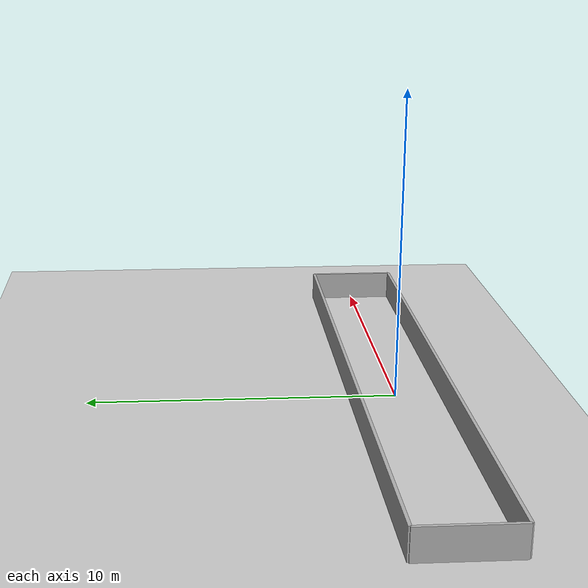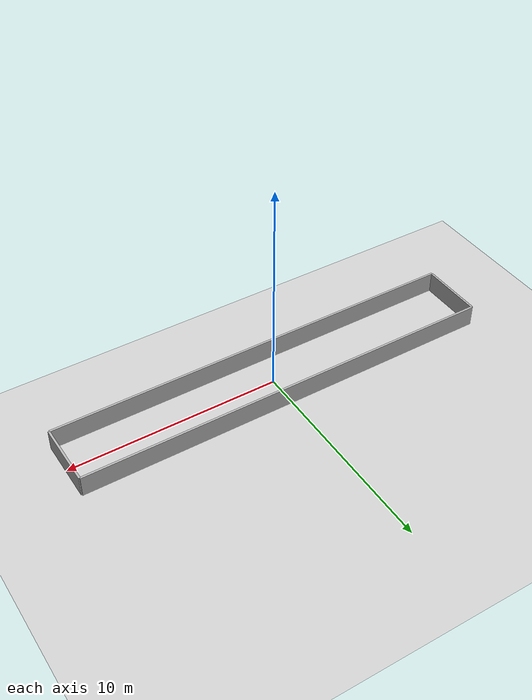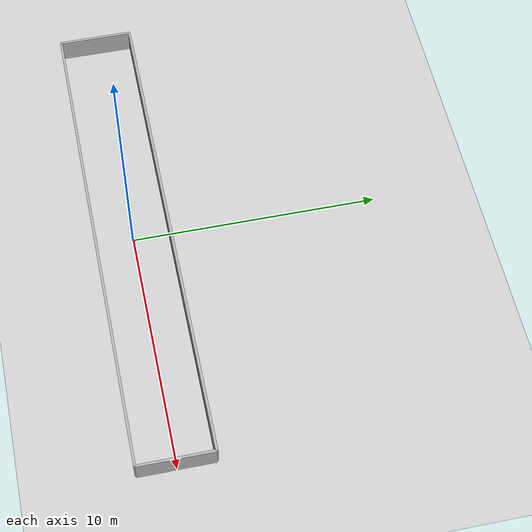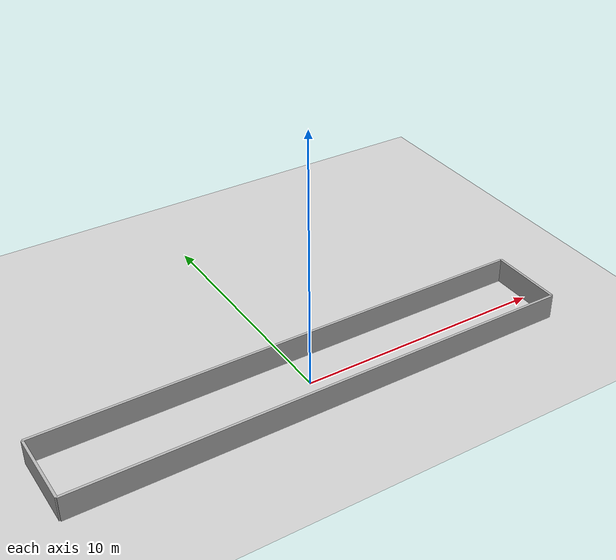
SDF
<?xml version="1.0" ?>
<sdf version="1.6">
  <world name="corridor">

    <physics type="ode">
      <max_step_size>0.01</max_step_size>
      <real_time_factor>1</real_time_factor>
      <real_time_update_rate>100</real_time_update_rate>
    </physics>

    <gui>
      <camera name="user_camera">
        <pose>-6 0 8 0 0.9 0</pose>
      </camera>
    </gui>

    <include><uri>model://sun</uri></include>
    <include><uri>model://ground_plane</uri></include>

    <!-- 20 m x 3 m straight corridor, walls along ±Y -->
    <model name="wall_north">
      <static>true</static>
      <pose>0 1.5 0.5 0 0 0</pose>
      <link name="link">
        <collision name="c"><geometry><box><size>20 0.1 1.0</size></box></geometry></collision>
        <visual name="v"><geometry><box><size>20 0.1 1.0</size></box></geometry>
          <material><ambient>0.7 0.7 0.7 1</ambient></material></visual>
      </link>
    </model>
    <model name="wall_south">
      <static>true</static>
      <pose>0 -1.5 0.5 0 0 0</pose>
      <link name="link">
        <collision name="c"><geometry><box><size>20 0.1 1.0</size></box></geometry></collision>
        <visual name="v"><geometry><box><size>20 0.1 1.0</size></box></geometry>
          <material><ambient>0.7 0.7 0.7 1</ambient></material></visual>
      </link>
    </model>
    <model name="wall_east">
      <static>true</static>
      <pose>10 0 0.5 0 0 0</pose>
      <link name="link">
        <collision name="c"><geometry><box><size>0.1 3 1.0</size></box></geometry></collision>
        <visual name="v"><geometry><box><size>0.1 3 1.0</size></box></geometry>
          <material><ambient>0.7 0.7 0.7 1</ambient></material></visual>
      </link>
    </model>
    <model name="wall_west">
      <static>true</static>
      <pose>-10 0 0.5 0 0 0</pose>
      <link name="link">
        <collision name="c"><geometry><box><size>0.1 3 1.0</size></box></geometry></collision>
        <visual name="v"><geometry><box><size>0.1 3 1.0</size></box></geometry>
          <material><ambient>0.7 0.7 0.7 1</ambient></material></visual>
      </link>
    </model>

  </world>
</sdf>
